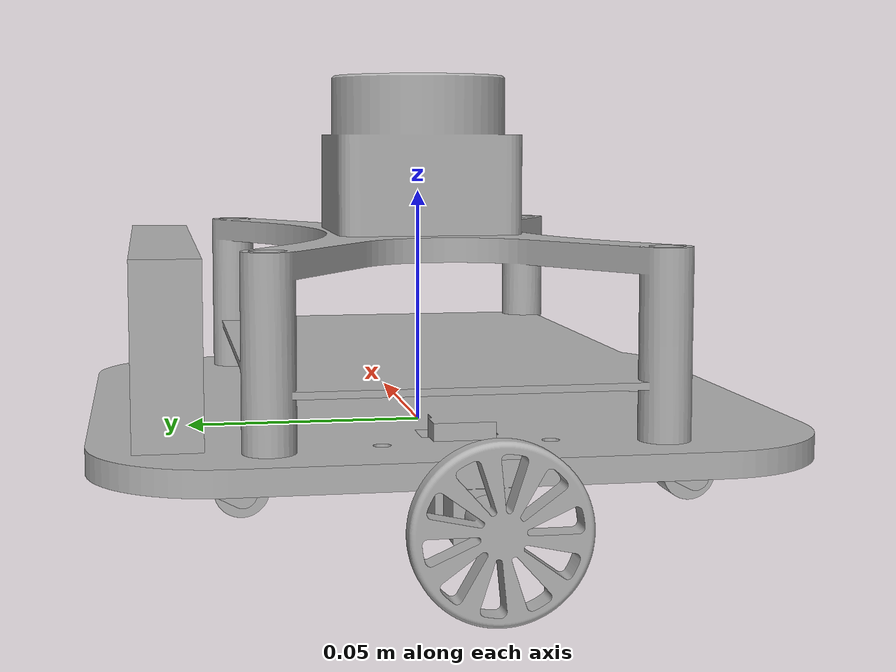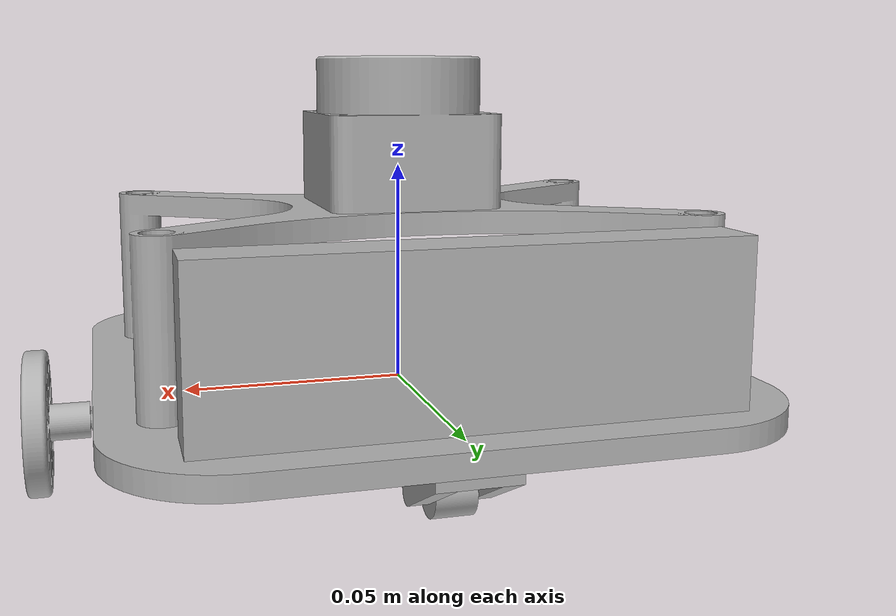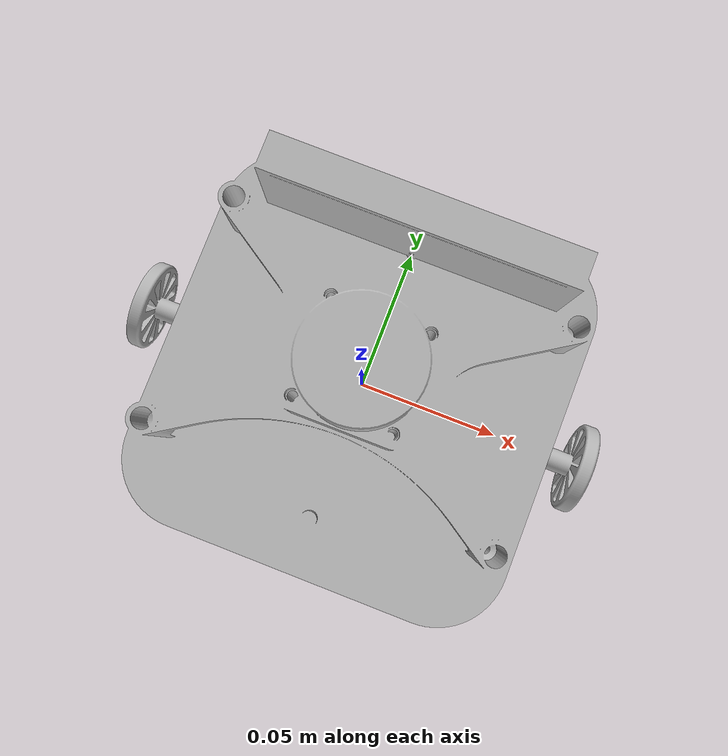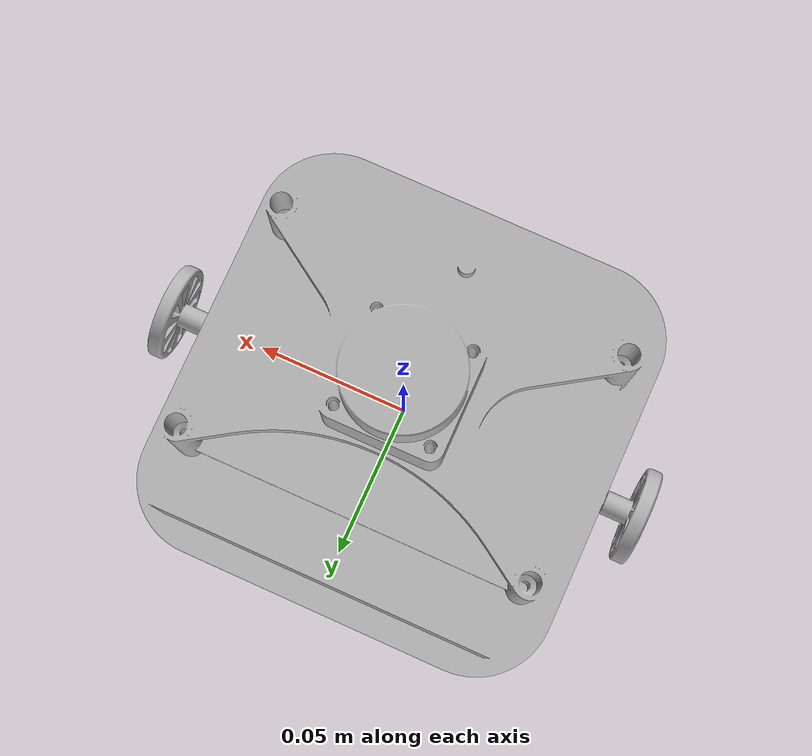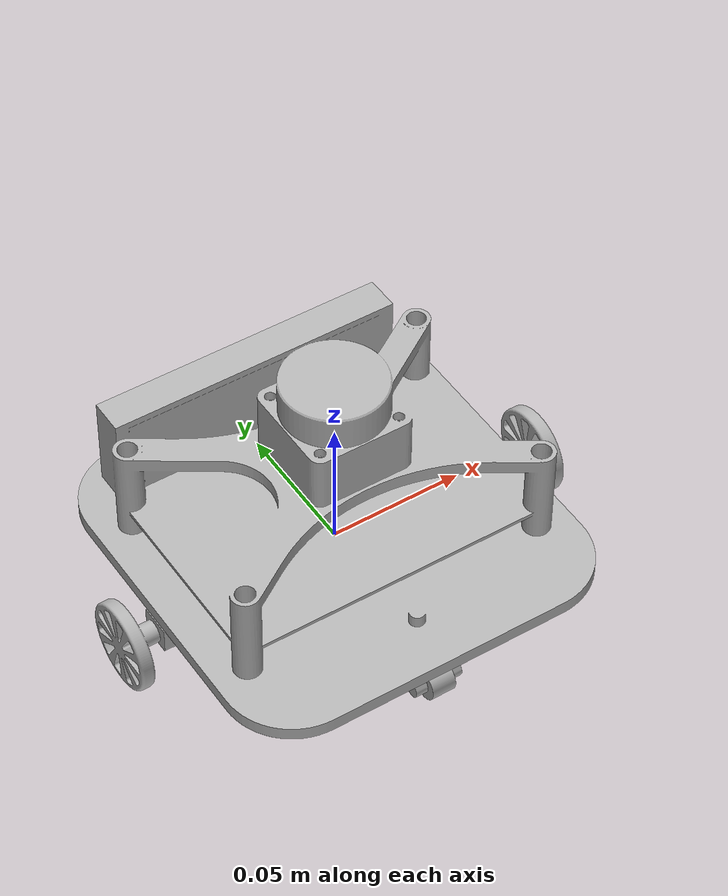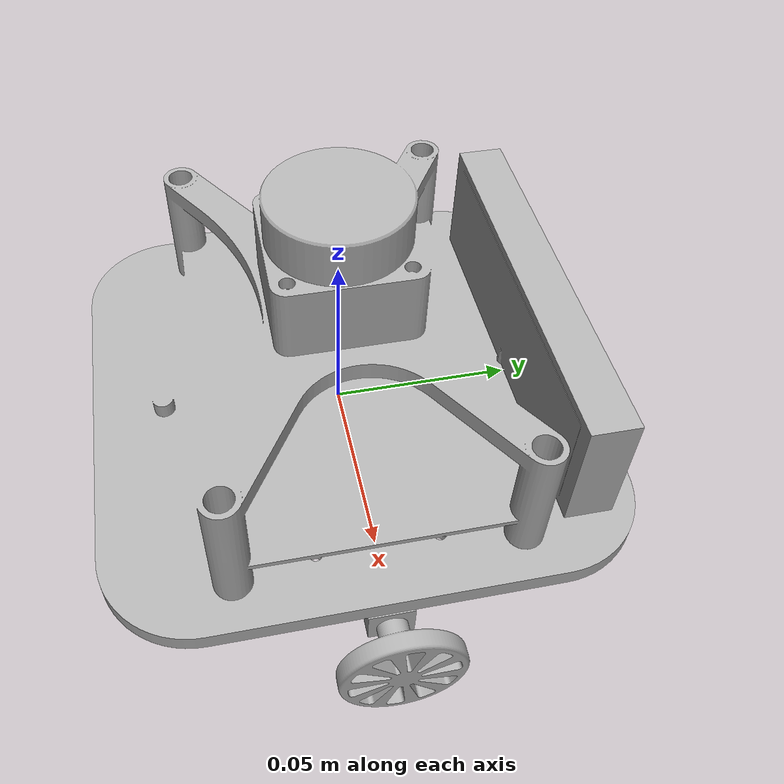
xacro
<?xml version="1.0" ?>
<robot name="benny_joints_export" xmlns:xacro="http://www.ros.org/wiki/xacro">

<!--
  Fusion export was Y-up. base_footprint + fixed Rx(+90°) puts the robot in ROS/Isaac Z-up.
  Re-import this URDF into Isaac after edits (or use the patched USD under urdf/benny_joints_export/).
-->

<xacro:include filename="materials.xacro" />
<xacro:include filename="benny_joints_export.trans" />
<xacro:include filename="benny_joints_export.gazebo" />

<!-- Relative to this URDF; works for Isaac file import and local xacro. -->
<xacro:property name="mesh_pkg" value="../meshes" />
<!-- PhysX-safe inertia for tiny caster rollers (~8 g); Fusion exported zeros -->
<xacro:property name="caster_roll_ixx" value="1e-6" />
<xacro:property name="caster_roll_iyy" value="1e-6" />
<xacro:property name="caster_roll_izz" value="1e-6" />

<!-- World / Isaac gravity frame (Z-up). Keep base_link in Fusion Y-up mesh frame. -->
<link name="base_footprint"/>
<joint name="base_footprint_joint" type="fixed">
  <origin xyz="0 0 0" rpy="1.5707963267948966 0 0"/>
  <parent link="base_footprint"/>
  <child link="base_link"/>
</joint>

<link name="base_link">
  <inertial>
    <origin xyz="-0.0003388127606072584 0.02051290543267288 -0.011617808758929826" rpy="0 0 0"/>
    <mass value="1.864647621796478"/>
    <inertia ixx="0.003256" iyy="0.004607" izz="0.003091" ixy="-1.5e-05" iyz="4.4e-05" ixz="7e-06"/>
  </inertial>
  <visual>
    <origin xyz="0 0 0" rpy="0 0 0"/>
    <geometry>
      <mesh filename="file://${mesh_pkg}/base_link.stl" scale="0.001 0.001 0.001"/>
    </geometry>
    <material name="silver"/>
  </visual>
  <collision>
    <origin xyz="0 0 0" rpy="0 0 0"/>
    <geometry>
      <mesh filename="file://${mesh_pkg}/base_link.stl" scale="0.001 0.001 0.001"/>
    </geometry>
  </collision>
</link>

<link name="left_wheel_1">
  <inertial>
    <origin xyz="0.01012542493809615 0 0" rpy="0 0 0"/>
    <mass value="0.02286217019822317"/>
    <inertia ixx="3e-06" iyy="2e-06" izz="2e-06" ixy="0.0" iyz="0.0" ixz="0.0"/>
  </inertial>
  <visual>
    <origin xyz="-0.0708 0.005 0" rpy="0 0 0"/>
    <geometry>
      <mesh filename="file://${mesh_pkg}/left_wheel_1.stl" scale="0.001 0.001 0.001"/>
    </geometry>
    <material name="silver"/>
  </visual>
  <collision>
    <origin xyz="-0.0708 0.005 0" rpy="0 0 0"/>
    <geometry>
      <mesh filename="file://${mesh_pkg}/left_wheel_1.stl" scale="0.001 0.001 0.001"/>
    </geometry>
  </collision>
</link>

<link name="right_wheel_1">
  <inertial>
    <origin xyz="-0.010125424938096164 0 0" rpy="0 0 0"/>
    <mass value="0.022862170198223546"/>
    <inertia ixx="3e-06" iyy="2e-06" izz="2e-06" ixy="0.0" iyz="0.0" ixz="0.0"/>
  </inertial>
  <visual>
    <origin xyz="0.0708 0.005 0" rpy="0 0 0"/>
    <geometry>
      <mesh filename="file://${mesh_pkg}/right_wheel_1.stl" scale="0.001 0.001 0.001"/>
    </geometry>
    <material name="silver"/>
  </visual>
  <collision>
    <origin xyz="0.0708 0.005 0" rpy="0 0 0"/>
    <geometry>
      <mesh filename="file://${mesh_pkg}/right_wheel_1.stl" scale="0.001 0.001 0.001"/>
    </geometry>
  </collision>
</link>

<link name="front_wheel_top_1">
  <inertial>
    <origin xyz="0 -0.004307143338962053 0.0029543975469227754" rpy="0 0 0"/>
    <mass value="0.016358250375028013"/>
    <inertia ixx="1e-06" iyy="1e-06" izz="1e-06" ixy="0.0" iyz="0.0" ixz="0.0"/>
  </inertial>
  <visual>
    <origin xyz="0 0.005 -0.05" rpy="0 0 0"/>
    <geometry>
      <mesh filename="file://${mesh_pkg}/front_wheel_top_1.stl" scale="0.001 0.001 0.001"/>
    </geometry>
    <material name="silver"/>
  </visual>
  <collision>
    <origin xyz="0 0.005 -0.05" rpy="0 0 0"/>
    <geometry>
      <mesh filename="file://${mesh_pkg}/front_wheel_top_1.stl" scale="0.001 0.001 0.001"/>
    </geometry>
  </collision>
</link>

<link name="front_wheel_bottom_1">
  <inertial>
    <origin xyz="-0.0045 0 0" rpy="0 0 0"/>
    <mass value="0.00799032675514028"/>
    <inertia ixx="${caster_roll_ixx}" iyy="${caster_roll_iyy}" izz="${caster_roll_izz}" ixy="0.0" iyz="0.0" ixz="0.0"/>
  </inertial>
  <visual>
    <origin xyz="-0.0045 0.015 -0.061" rpy="0 0 0"/>
    <geometry>
      <mesh filename="file://${mesh_pkg}/front_wheel_bottom_1.stl" scale="0.001 0.001 0.001"/>
    </geometry>
    <material name="silver"/>
  </visual>
  <collision>
    <origin xyz="-0.0045 0.015 -0.061" rpy="0 0 0"/>
    <geometry>
      <mesh filename="file://${mesh_pkg}/front_wheel_bottom_1.stl" scale="0.001 0.001 0.001"/>
    </geometry>
  </collision>
</link>

<link name="rear_wheel_top_1">
  <inertial>
    <origin xyz="0 -0.004307143338962053 0.0029543975469227685" rpy="0 0 0"/>
    <mass value="0.016358250375028017"/>
    <inertia ixx="1e-06" iyy="1e-06" izz="1e-06" ixy="0.0" iyz="0.0" ixz="0.0"/>
  </inertial>
  <visual>
    <origin xyz="0 0.005 0.05" rpy="0 0 0"/>
    <geometry>
      <mesh filename="file://${mesh_pkg}/rear_wheel_top_1.stl" scale="0.001 0.001 0.001"/>
    </geometry>
    <material name="silver"/>
  </visual>
  <collision>
    <origin xyz="0 0.005 0.05" rpy="0 0 0"/>
    <geometry>
      <mesh filename="file://${mesh_pkg}/rear_wheel_top_1.stl" scale="0.001 0.001 0.001"/>
    </geometry>
  </collision>
</link>

<link name="rear_wheel_bottom_1">
  <inertial>
    <origin xyz="-0.0045 0 0" rpy="0 0 0"/>
    <mass value="0.00799032675514028"/>
    <inertia ixx="${caster_roll_ixx}" iyy="${caster_roll_iyy}" izz="${caster_roll_izz}" ixy="0.0" iyz="0.0" ixz="0.0"/>
  </inertial>
  <visual>
    <origin xyz="-0.0045 0.015 0.039" rpy="0 0 0"/>
    <geometry>
      <mesh filename="file://${mesh_pkg}/rear_wheel_bottom_1.stl" scale="0.001 0.001 0.001"/>
    </geometry>
    <material name="silver"/>
  </visual>
  <collision>
    <origin xyz="-0.0045 0.015 0.039" rpy="0 0 0"/>
    <geometry>
      <mesh filename="file://${mesh_pkg}/rear_wheel_bottom_1.stl" scale="0.001 0.001 0.001"/>
    </geometry>
  </collision>
</link>

<!-- Drive wheels -->
<joint name="left_wheel_joint" type="continuous">
  <origin xyz="0.0708 -0.005 0" rpy="0 0 0"/>
  <parent link="base_link"/>
  <child link="left_wheel_1"/>
  <axis xyz="1 0 0"/>
  <dynamics damping="0.0" friction="0.0"/>
  <limit effort="5.0" velocity="20.0"/>
</joint>

<joint name="right_wheel_joint" type="continuous">
  <origin xyz="-0.0708 -0.005 0" rpy="0 0 0"/>
  <parent link="base_link"/>
  <child link="right_wheel_1"/>
  <axis xyz="-1 0 0"/>
  <dynamics damping="0.0" friction="0.0"/>
  <limit effort="5.0" velocity="20.0"/>
</joint>

<!-- Front caster: yaw (passive) then roll (passive) -->
<joint name="front_caster_yaw_joint" type="continuous">
  <origin xyz="0 -0.0035 0.05" rpy="0 0 0"/>
  <parent link="base_link"/>
  <child link="front_wheel_top_1"/>
  <axis xyz="0 -1 0"/>
  <dynamics damping="0.01" friction="0.0"/>
</joint>

<joint name="front_caster_roll_joint" type="continuous">
  <origin xyz="0.0045 -0.01 0.011" rpy="0 0 0"/>
  <parent link="front_wheel_top_1"/>
  <child link="front_wheel_bottom_1"/>
  <axis xyz="-1 0 0"/>
  <dynamics damping="0.01" friction="0.0"/>
</joint>

<!-- Rear caster -->
<joint name="rear_caster_yaw_joint" type="continuous">
  <origin xyz="0 -0.0035 -0.05" rpy="0 0 0"/>
  <parent link="base_link"/>
  <child link="rear_wheel_top_1"/>
  <axis xyz="0 -1 0"/>
  <dynamics damping="0.01" friction="0.0"/>
</joint>

<joint name="rear_caster_roll_joint" type="continuous">
  <origin xyz="0.0045 -0.01 0.011" rpy="0 0 0"/>
  <parent link="rear_wheel_top_1"/>
  <child link="rear_wheel_bottom_1"/>
  <axis xyz="-1 0 0"/>
  <dynamics damping="0.01" friction="0.0"/>
</joint>

</robot>

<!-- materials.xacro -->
<robot name="benny_joints_export" xmlns:xacro="http://www.ros.org/wiki/xacro" >

<material name="silver">
  <color rgba="0.700 0.700 0.700 1.000"/>
</material>

</robot>

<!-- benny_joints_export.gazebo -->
<robot name="benny_joints_export" xmlns:xacro="http://www.ros.org/wiki/xacro" >

<xacro:property name="body_color" value="Gazebo/Silver" />

<gazebo>
  <plugin name="control" filename="libgazebo_ros_control.so"/>
</gazebo>

<gazebo reference="base_link">
  <material>${body_color}</material>
  <mu1>0.5</mu1>
  <mu2>0.5</mu2>
  <self_collide>false</self_collide>
  <gravity>true</gravity>
</gazebo>

<!-- Drive wheels: higher friction -->
<gazebo reference="left_wheel_1">
  <material>${body_color}</material>
  <mu1>1.0</mu1>
  <mu2>1.0</mu2>
  <self_collide>false</self_collide>
</gazebo>

<gazebo reference="right_wheel_1">
  <material>${body_color}</material>
  <mu1>1.0</mu1>
  <mu2>1.0</mu2>
  <self_collide>false</self_collide>
</gazebo>

<!-- Casters -->
<gazebo reference="front_wheel_top_1">
  <material>${body_color}</material>
  <mu1>0.3</mu1>
  <mu2>0.3</mu2>
  <self_collide>false</self_collide>
</gazebo>

<gazebo reference="front_wheel_bottom_1">
  <material>${body_color}</material>
  <mu1>0.8</mu1>
  <mu2>0.8</mu2>
  <self_collide>false</self_collide>
</gazebo>

<gazebo reference="rear_wheel_top_1">
  <material>${body_color}</material>
  <mu1>0.3</mu1>
  <mu2>0.3</mu2>
  <self_collide>false</self_collide>
</gazebo>

<gazebo reference="rear_wheel_bottom_1">
  <material>${body_color}</material>
  <mu1>0.8</mu1>
  <mu2>0.8</mu2>
  <self_collide>false</self_collide>
</gazebo>

</robot>
